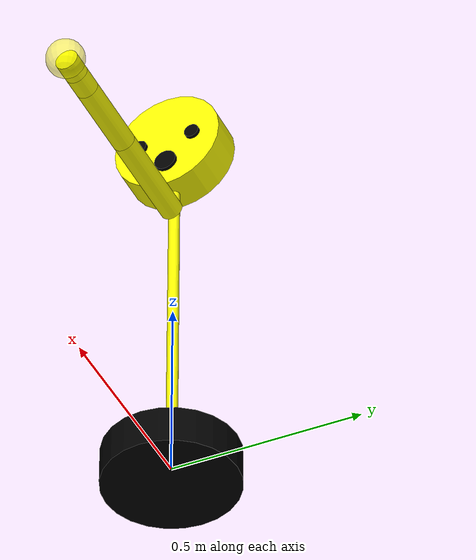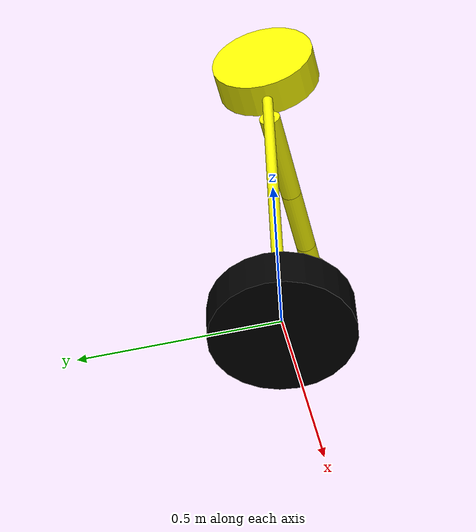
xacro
<?xml version="1.0" ?>
<robot name="mimi" xmlns:xacro="http://ros.org/wiki/xacro">
  <!--arm config-->
  <xacro:property name="arm_height" value="0.72"/>
  <xacro:property name="arm_radius" value="0.03"/>
  <xacro:property name="link1_length" value="0.282"/>
  <xacro:property name="link2_length" value="0.209"/>
  <xacro:property name="link3_length" value="0.059"/>
  <xacro:property name="link4_length" value="0.055"/>
  <!--head variable-->
  <xacro:property name="head_radius" value="0.15" />
  <xacro:property name="head_depth" value="0.1" />
  <xacro:property name="eye_radius" value="0.02" />
  <xacro:property name="eye_y" value="0.075" />
  <xacro:property name="mouse_radius" value="0.03" />
  <xacro:property name="mouse_x" value="0.075" />
  <xacro:property name="pi" value="3.14159265359" />
  <!--torso variable-->
  <xacro:property name="kozue_radius" value="0.015" />
  <xacro:property name="kozue_height" value="0.85" />
  <!--base variable-->
  <xacro:property name="kobuki_radius" value="0.175" />
  <xacro:property name="kobuki_height" value="0.1" />

  <!--color definition-->
  <material name="yellow">
    <color rgba="1 1 0 1"/>
  </material>
  <material name="black">
    <color rgba="0 0 0 1"/>
  </material>
  <material name="transparent_yellow">
    <color rgba="1 1 0 0.5"/>
  </material>
  <!--base definition-->
  <xacro:macro name="default_inertial" params="mass">
    <inertial>
      <mass value="${mass}" />
      <inertia ixx="1.0" ixy="0.0" ixz="0.0" iyy="1.0" iyz="0.0" izz="1.0" />
    </inertial>
  </xacro:macro>

  <link name="world"/>
  <joint name="world2base" type="fixed">
    <parent link="world"/>
    <child link="kobuki_base"/>
  </joint>

  <link name="kobuki_base">
    <visual>
      <geometry>
        <cylinder radius="${kobuki_radius}" length="${kobuki_height}"/>
      </geometry>
      <material name="black"/>
    </visual>
    <collision>
      <geometry>
        <cylinder radius="${kobuki_radius}" length="${kobuki_height}"/>
      </geometry>
    </collision>
    <xacro:default_inertial mass="10"/>
  </link>
  <!--torso definition-->
  <joint name="base2torso" type="fixed">
    <parent link="kobuki_base"/>
    <child link="mini_torso"/>
    <axis xyz="0 0 1"/>
    <origin xyz="0 0 ${kozue_height/2+kobuki_height/2}"/>
  </joint>

  <link name="mini_torso">
    <visual>
      <geometry>
        <cylinder radius="${kozue_radius}" length="${kozue_height}"/>
      </geometry>
      <material name="yellow"/>
    </visual>
    <collision>
      <geometry>
        <cylinder radius="${kozue_radius}" length="${kozue_height}"/>
      </geometry>
    </collision>
    <xacro:default_inertial mass="10"/>
  </link>
  <!--head definition-->
  <joint name="torso2head" type="fixed">
    <parent link="mini_torso"/>
    <child link="mini_head"/>
    <axis xyz="0 0 1"/>
    <origin rpy="0 ${pi/2} 0" xyz="0 0 ${head_radius+kozue_height/2}"/>
  </joint>

  <link name="mini_head">
    <visual>
      <geometry>
        <cylinder radius="${head_radius}" length="${head_depth}"/>
      </geometry>
      <material name="yellow"/>
    </visual>
    <collision>
      <geometry>
        <cylinder radius="${head_radius}" length="${head_depth"/>
      </geometry>
    </collision>
    <xacro:default_inertial mass="10"/>
  </link>

  <joint name="head2right_eye" type="fixed">
    <parent link="mini_head"/>
    <child link="mini_right_eye"/>
    <axis xyz="0 0 1"/>
    <origin xyz="0 ${eye_y} 0.01"/>
  </joint>

  <link name="mini_right_eye">
    <visual>
      <geometry>
        <cylinder radius="${eye_radius}" length="${head_depth}"/>
      </geometry>
      <material name="black"/>
    </visual>
    <collision>
      <geometry>
        <cylinder radius="${eye_radius}" length="${head_depth}"/>
      </geometry>
    </collision>
    <xacro:default_inertial mass="10"/>
  </link>

  <joint name="head2left_eye" type="fixed">
    <parent link="mini_head"/>
    <child link="mini_left_eye"/>
    <axis xyz="0 0 1"/>
    <origin xyz="0 ${eye_y*-1} 0.01"/>
  </joint>

  <link name="mini_left_eye">
    <visual>
      <geometry>
        <cylinder radius="${eye_radius}" length="${head_depth}"/>
      </geometry>
      <material name="black"/>
    </visual>
    <collision>
      <geometry>
        <cylinder radius="${eye_radius}" length="${head_depth}"/>
      </geometry>
    </collision>
    <xacro:default_inertial mass="10"/>
  </link>

  <joint name="head2mouse" type="fixed">
    <parent link="mini_head"/>
    <child link="mini_mouse"/>
    <axis xyz="0 0 1"/>
    <origin xyz="${mouse_x} 0 0.01"/>
  </joint>

  <link name="mini_mouse">
    <visual>
      <geometry>
        <cylinder radius="${mouse_radius}" length="${head_depth}"/>
      </geometry>
      <material name="black"/>
    </visual>
    <collision>
      <geometry>
        <cylinder radius="${mouse_radius}" length="${head_depth}"/>
      </geometry>
    </collision>
    <xacro:default_inertial mass="10"/>
  </link>
  <!--arm definition-->
  <joint name="joint1" type="revolute">
    <parent link="mini_torso"/>
    <child link="link1"/>
    <axis xyz="0 -1 0"/>
    <origin rpy="0 0 0" xyz="${kozue_radius} 0 ${arm_height/2}"/>
    <limit effort="30" lower="-1.57" upper="1.57" velocity="1.571"/>
  </joint>

  <link name="link1">
    <visual>
      <geometry>
        <cylinder radius="${arm_radius}" length="${link1_length}"/>
      </geometry>
      <origin xyz="${link1_length/2} 0 0" rpy="0 ${-1*pi/2} 0"/>
      <material name="yellow"/>
    </visual>
    <collision>
      <geometry>
	<cylinder radius="${arm_radius}" length="${link1_length}"/>
      </geometry>
      <origin xyz="${link1_length/2} 0 0" rpy="0 ${-1*pi/2} 0"/>
    </collision>
    <xacro:default_inertial mass="10"/>
  </link>

  <joint name="joint2" type="revolute">
    <parent link="link1"/>
    <child link="link2"/>
    <axis xyz="0 -1 0"/>
    <origin rpy="0 0 0" xyz="${link1_length} 0 0"/>
    <limit effort="30" lower="-1.57" upper="1.57" velocity="1.571"/>
  </joint>

  <link name="link2">
    <visual>
      <geometry>
        <cylinder radius="${arm_radius}" length="${link2_length}"/>
      </geometry>
      <origin xyz="${link2_length/2} 0 0" rpy="0 ${-1*pi/2} 0"/>
      <material name="yellow"/>
    </visual>
    <collision>
      <geometry>
	<cylinder radius="${arm_radius}" length="${link2_length}"/>
      </geometry>
      <origin xyz="${link2_length/2} 0 0" rpy="0 ${-1*pi/2} 0"/>
    </collision>
    <xacro:default_inertial mass="10"/>
  </link>

  <joint name="joint3" type="revolute">
    <parent link="link2"/>
    <child link="link3"/>
    <axis xyz="0 -1 0"/>
    <origin rpy="0 0 0" xyz="${link2_length} 0 0"/>
    <limit effort="30" lower="-1.57" upper="1.57" velocity="1.571"/>
  </joint>

  <link name="link3">
    <visual>
      <geometry>
        <cylinder radius="${arm_radius}" length="${link3_length}"/>
      </geometry>
      <origin xyz="${link3_length/2} 0 0" rpy="0 ${-1*pi/2} 0"/>
      <material name="yellow"/>
    </visual>
    <collision>
      <geometry>
	<cylinder radius="${arm_radius}" length="${link3_length}"/>
      </geometry>
      <origin xyz="${link3_length/2} 0 0" rpy="0 ${-1*pi/2} 0"/>
    </collision>
    <xacro:default_inertial mass="10"/>
  </link>

  <joint name="joint4" type="revolute">
    <parent link="link3"/>
    <child link="link4"/>
    <axis xyz="1 0 0"/>
    <origin rpy="0 0 0" xyz="${link3_length} 0 0"/>
    <limit effort="30" lower="-1.57" upper="1.57" velocity="1.571"/>
  </joint>

  <link name="link4">
    <visual>
      <geometry>
        <cylinder radius="${arm_radius}" length="${link4_length}"/>
      </geometry>
      <origin xyz="${link4_length/2} 0 0" rpy="0 ${-1*pi/2} 0"/>
      <material name="yellow"/>
    </visual>
    <collision>
      <geometry>
	<cylinder radius="${arm_radius}" length="${link4_length}"/>
      </geometry>
      <origin xyz="${link4_length/2} 0 0" rpy="0 ${-1*pi/2} 0"/>
    </collision>
    <xacro:default_inertial mass="10"/>
  </link>

  <joint name="end_dummy_joint" type="fixed">
    <parent link="link4"/>
    <child link="end_point"/>
    <axis xyz="0 0 1"/>
    <origin rpy="0 0 0" xyz="${link3_length} 0 0"/>
  </joint>

  <link name="end_point">
    <visual>
      <geometry>
        <sphere radius="0.05"/>
      </geometry>
      <material name="transparent_yellow"/>
    </visual>
    <xacro:default_inertial mass="10"/>
  </link>

</robot>
